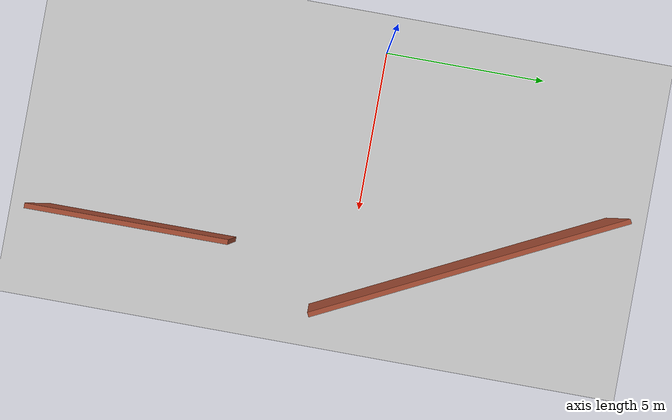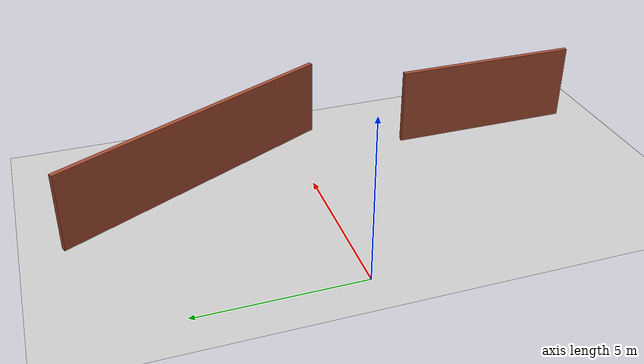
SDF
<sdf version="1.6">
 <world name="default">
  <model name="ground_plane">
   <static>1</static>
   <link name="link">
    <collision name="collision">
     <geometry><plane><normal>0 0 1</normal><size>100 100</size></plane></geometry>
     <surface>
      <contact><collide_bitmask>65535</collide_bitmask></contact>
      <friction><ode><mu>100</mu><mu2>50</mu2></ode></friction>
     </surface>
    </collision>
    <visual name="visual">
     <cast_shadows>0</cast_shadows>
     <geometry><plane><normal>0 0 1</normal><size>100 100</size></plane></geometry>
     <material>
      <script><uri>file://media/materials/scripts/gazebo.material</uri><name>Gazebo/Grey</name></script>
     </material>
    </visual>
   </link>
  </model>
  <model name="office">
   <link name="Wall_12">
    <pose>10.0538 4.3089 0 0 0 -1.1105</pose>
    <inertial>
     <inertia><ixx>0</ixx><ixy>0</ixy><ixz>0</ixz><iyy>0</iyy><iyz>0</iyz><izz>0</izz></inertia>
     <mass>0</mass>
    </inertial>
    <visual name="Wall_12_Visual">
     <pose>0 0 1.25 0 -0 0</pose>
     <geometry><box><size>9.75381 0.15 2.5</size></box></geometry>
     <material>
      <script><uri>file://media/materials/scripts/gazebo.material</uri><name>Gazebo/Bricks</name></script>
      <ambient>0.435294 0.796078 0.67451 1</ambient>
      <shader type="pixel"/>
      <diffuse>1 1 1 1</diffuse>
      <specular>0.2 0.2 0.2 1</specular>
      <emissive>0 0 0 1</emissive>
     </material>
     <meta><layer>0</layer></meta>
    </visual>
    <collision name="Wall_12_Collision">
     <pose>0 0 1.25 0 -0 0</pose>
     <geometry><box><size>9.75381 0.15 2.5</size></box></geometry>
     <surface>
      <friction>
       <ode><mu>1</mu><mu2>1</mu2><fdir1>0 0 0</fdir1><slip1>0</slip1><slip2>0</slip2></ode>
       <torsional>
        <coefficient>1</coefficient>
        <patch_radius>0</patch_radius>
        <surface_radius>0</surface_radius>
        <use_patch_radius>1</use_patch_radius>
        <ode><slip>0</slip></ode>
       </torsional>
      </friction>
      <bounce><restitution_coefficient>0</restitution_coefficient><threshold>1e+06</threshold></bounce>
      <contact>
       <collide_without_contact>0</collide_without_contact>
       <collide_without_contact_bitmask>1</collide_without_contact_bitmask>
       <collide_bitmask>1</collide_bitmask>
       <ode>
        <soft_cfm>0</soft_cfm>
        <soft_erp>0.2</soft_erp>
        <kp>1e+13</kp>
        <kd>1</kd>
        <max_vel>0.01</max_vel>
        <min_depth>0</min_depth>
       </ode>
       <bullet>
        <split_impulse>1</split_impulse>
        <split_impulse_penetration_threshold>-0.01</split_impulse_penetration_threshold>
        <soft_cfm>0</soft_cfm>
        <soft_erp>0.2</soft_erp>
        <kp>1e+13</kp>
        <kd>1</kd>
       </bullet>
      </contact>
     </surface>
    </collision>
   </link>
   <link name="Wall_15">
    <pose>10.5606 -5.72124 0 0 0 -1.5708</pose>
    <visual name="Wall_15_Visual">
     <pose>0 0 1.25 0 -0 0</pose>
     <geometry><box><size>6 0.15 2.5</size></box></geometry>
     <material>
      <script><uri>file://media/materials/scripts/gazebo.material</uri><name>Gazebo/Bricks</name></script>
      <ambient>0.435294 0.796078 0.67451 1</ambient>
      <shader type="pixel"/>
      <diffuse>1 1 1 1</diffuse>
      <specular>0.2 0.2 0.2 1</specular>
      <emissive>0 0 0 1</emissive>
     </material>
     <meta><layer>0</layer></meta>
    </visual>
    <collision name="Wall_15_Collision">
     <pose>0 0 1.25 0 -0 0</pose>
     <geometry><box><size>6 0.15 2.5</size></box></geometry>
     <surface>
      <friction>
       <ode><mu>1</mu><mu2>1</mu2><fdir1>0 0 0</fdir1><slip1>0</slip1><slip2>0</slip2></ode>
       <torsional>
        <coefficient>1</coefficient>
        <patch_radius>0</patch_radius>
        <surface_radius>0</surface_radius>
        <use_patch_radius>1</use_patch_radius>
        <ode><slip>0</slip></ode>
       </torsional>
      </friction>
      <bounce><restitution_coefficient>0</restitution_coefficient><threshold>1e+06</threshold></bounce>
      <contact>
       <collide_without_contact>0</collide_without_contact>
       <collide_without_contact_bitmask>1</collide_without_contact_bitmask>
       <collide_bitmask>1</collide_bitmask>
       <ode>
        <soft_cfm>0</soft_cfm>
        <soft_erp>0.2</soft_erp>
        <kp>1e+13</kp>
        <kd>1</kd>
        <max_vel>0.01</max_vel>
        <min_depth>0</min_depth>
       </ode>
       <bullet>
        <split_impulse>1</split_impulse>
        <split_impulse_penetration_threshold>-0.01</split_impulse_penetration_threshold>
        <soft_cfm>0</soft_cfm>
        <soft_erp>0.2</soft_erp>
        <kp>1e+13</kp>
        <kd>1</kd>
       </bullet>
      </contact>
     </surface>
    </collision>
   </link>
   <static>1</static>
   <pose>-3.94455 -0.92637 0 0 -0 0</pose>
  </model>
 </world>
</sdf>
